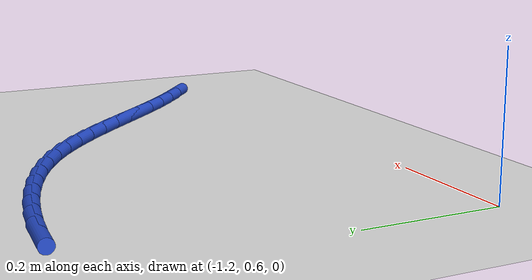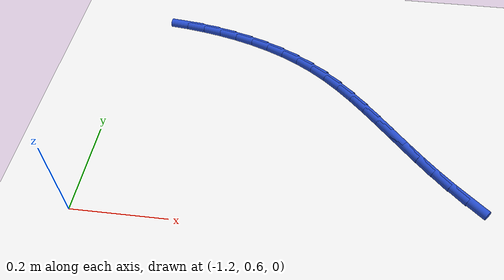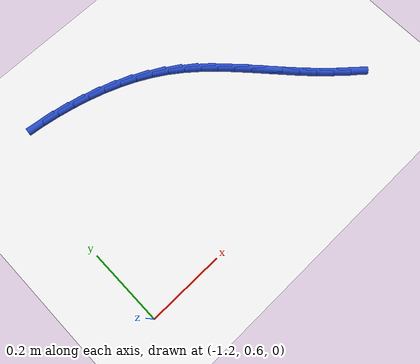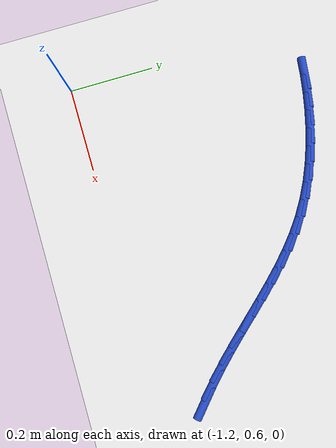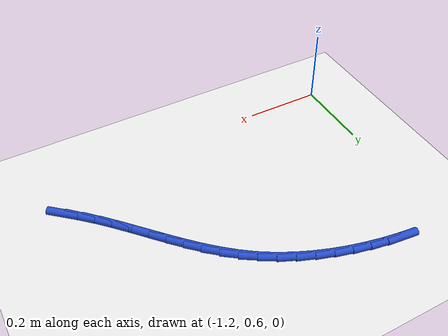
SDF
<sdf version="1.6">
 <world name="default">
  <model name="ground_plane">
   <static>1</static>
   <link name="link">
    <collision name="collision">
     <geometry><plane><normal>0 0 1</normal><size>100 100</size></plane></geometry>
     <surface><friction><ode><mu>100</mu><mu2>50</mu2></ode></friction></surface>
    </collision>
    <visual name="visual">
     <cast_shadows>0</cast_shadows>
     <geometry><plane><normal>0 0 1</normal><size>100 100</size></plane></geometry>
     <material>
      <script><uri>file://media/materials/scripts/gazebo.material</uri><name>Gazebo/WhiteGlow</name></script>
     </material>
    </visual>
   </link>
  </model>
  <model name="line">
   <link name="link_20">
    <pose>-0.4172818657614865 0.700809948610316 0.01 0 1.57 -0.7196823648466406</pose>
    <collision name="collision">
     <geometry><cylinder><radius>0.01</radius><length>0.08</length></cylinder></geometry>
    </collision>
    <visual name="visual">
     <material>
      <script><name>Gazebo/Blue</name><uri>file://media/materials/scripts/gazebo.material</uri></script>
     </material>
     <geometry><cylinder><radius>0.01</radius><length>0.08</length></cylinder></geometry>
    </visual>
   </link>
   <link name="link_21">
    <pose>-0.45041634927168483 0.7298525248971306 0.01 0 1.57 -0.7610096852235865</pose>
    <collision name="collision">
     <geometry><cylinder><radius>0.01</radius><length>0.08</length></cylinder></geometry>
    </collision>
    <visual name="visual">
     <material>
      <script><name>Gazebo/Blue</name><uri>file://media/materials/scripts/gazebo.material</uri></script>
     </material>
     <geometry><cylinder><radius>0.01</radius><length>0.08</length></cylinder></geometry>
    </visual>
   </link>
   <link name="link_22">
    <pose>-0.4821890321233908 0.7601120368964726 0.01 0 1.57 -0.797152304627542</pose>
    <collision name="collision">
     <geometry><cylinder><radius>0.01</radius><length>0.08</length></cylinder></geometry>
    </collision>
    <visual name="visual">
     <material>
      <script><name>Gazebo/Blue</name><uri>file://media/materials/scripts/gazebo.material</uri></script>
     </material>
     <geometry><cylinder><radius>0.01</radius><length>0.08</length></cylinder></geometry>
    </visual>
   </link>
   <link name="link_23">
    <pose>-0.512741858784416 0.7913916846673803 0.01 0 1.57 -0.8210310841916981</pose>
    <collision name="collision">
     <geometry><cylinder><radius>0.01</radius><length>0.08</length></cylinder></geometry>
    </collision>
    <visual name="visual">
     <material>
      <script><name>Gazebo/Blue</name><uri>file://media/materials/scripts/gazebo.material</uri></script>
     </material>
     <geometry><cylinder><radius>0.01</radius><length>0.08</length></cylinder></geometry>
    </visual>
   </link>
   <link name="link_24">
    <pose>-0.5424426831592627 0.8232883364614045 0.01 0 1.57 -0.8325101597866503</pose>
    <collision name="collision">
     <geometry><cylinder><radius>0.01</radius><length>0.08</length></cylinder></geometry>
    </collision>
    <visual name="visual">
     <material>
      <script><name>Gazebo/Blue</name><uri>file://media/materials/scripts/gazebo.material</uri></script>
     </material>
     <geometry><cylinder><radius>0.01</radius><length>0.08</length></cylinder></geometry>
    </visual>
   </link>
   <link name="link_25">
    <pose>-0.5716606430352817 0.8553976879103389 0.01 0 1.57 -0.8314720935630214</pose>
    <collision name="collision">
     <geometry><cylinder><radius>0.01</radius><length>0.08</length></cylinder></geometry>
    </collision>
    <visual name="visual">
     <material>
      <script><name>Gazebo/Blue</name><uri>file://media/materials/scripts/gazebo.material</uri></script>
     </material>
     <geometry><cylinder><radius>0.01</radius><length>0.08</length></cylinder></geometry>
    </visual>
   </link>
   <link name="link_26">
    <pose>-0.600764876199824 0.887315434645976 0.01 0 1.57 -0.8177228509698592</pose>
    <collision name="collision">
     <geometry><cylinder><radius>0.01</radius><length>0.08</length></cylinder></geometry>
    </collision>
    <visual name="visual">
     <material>
      <script><name>Gazebo/Blue</name><uri>file://media/materials/scripts/gazebo.material</uri></script>
     </material>
     <geometry><cylinder><radius>0.01</radius><length>0.08</length></cylinder></geometry>
    </visual>
   </link>
   <link name="link_27">
    <pose>-0.6301245204402404 0.9186372723001099 0.01 0 1.57 -0.7909934375270149</pose>
    <collision name="collision">
     <geometry><cylinder><radius>0.01</radius><length>0.08</length></cylinder></geometry>
    </collision>
    <visual name="visual">
     <material>
      <script><name>Gazebo/Blue</name><uri>file://media/materials/scripts/gazebo.material</uri></script>
     </material>
     <geometry><cylinder><radius>0.01</radius><length>0.08</length></cylinder></geometry>
    </visual>
   </link>
   <link name="link_28">
    <pose>-0.6601087135438817 0.9489588965045337 0.01 0 1.57 -0.7510052885653716</pose>
    <collision name="collision">
     <geometry><cylinder><radius>0.01</radius><length>0.08</length></cylinder></geometry>
    </collision>
    <visual name="visual">
     <material>
      <script><name>Gazebo/Blue</name><uri>file://media/materials/scripts/gazebo.material</uri></script>
     </material>
     <geometry><cylinder><radius>0.01</radius><length>0.08</length></cylinder></geometry>
    </visual>
   </link>
   <link name="link_29">
    <pose>-0.691086593298099 0.9778760028910407 0.01 0 1.57 -0.6976090979489733</pose>
    <collision name="collision">
     <geometry><cylinder><radius>0.01</radius><length>0.08</length></cylinder></geometry>
    </collision>
    <visual name="visual">
     <material>
      <script><name>Gazebo/Blue</name><uri>file://media/materials/scripts/gazebo.material</uri></script>
     </material>
     <geometry><cylinder><radius>0.01</radius><length>0.08</length></cylinder></geometry>
    </visual>
   </link>
   <link name="link_30">
    <pose>-0.7234272974902427 1.004984287091424 0.01 0 1.57 -0.6310009686447844</pose>
    <collision name="collision">
     <geometry><cylinder><radius>0.01</radius><length>0.08</length></cylinder></geometry>
    </collision>
    <visual name="visual">
     <material>
      <script><name>Gazebo/Blue</name><uri>file://media/materials/scripts/gazebo.material</uri></script>
     </material>
     <geometry><cylinder><radius>0.01</radius><length>0.08</length></cylinder></geometry>
    </visual>
   </link>
   <link name="link_31">
    <pose>-0.7574999639076643 1.0298794447374777 0.01 0 1.57 -0.5545024217298062</pose>
    <collision name="collision">
     <geometry><cylinder><radius>0.01</radius><length>0.08</length></cylinder></geometry>
    </collision>
    <visual name="visual">
     <material>
      <script><name>Gazebo/Blue</name><uri>file://media/materials/scripts/gazebo.material</uri></script>
     </material>
     <geometry><cylinder><radius>0.01</radius><length>0.08</length></cylinder></geometry>
    </visual>
   </link>
   <link name="link_32">
    <pose>-0.7935826733913394 1.0522260901025822 0.01 0 1.57 -0.48122745938894457</pose>
    <collision name="collision">
     <geometry><cylinder><radius>0.01</radius><length>0.08</length></cylinder></geometry>
    </collision>
    <visual name="visual">
     <material>
      <script><name>Gazebo/Blue</name><uri>file://media/materials/scripts/gazebo.material</uri></script>
     </material>
     <geometry><cylinder><radius>0.01</radius><length>0.08</length></cylinder></geometry>
    </visual>
   </link>
   <link name="link_33">
    <pose>-0.8315051828435908 1.072028162224167 0.01 0 1.57 -0.41462984590011337</pose>
    <collision name="collision">
     <geometry><cylinder><radius>0.01</radius><length>0.08</length></cylinder></geometry>
    </collision>
    <visual name="visual">
     <material>
      <script><name>Gazebo/Blue</name><uri>file://media/materials/scripts/gazebo.material</uri></script>
     </material>
     <geometry><cylinder><radius>0.01</radius><length>0.08</length></cylinder></geometry>
    </visual>
   </link>
   <link name="link_34">
    <pose>-0.8709595048268142 1.0893938552588143 0.01 0 1.57 -0.35409090840076</pose>
    <collision name="collision">
     <geometry><cylinder><radius>0.01</radius><length>0.08</length></cylinder></geometry>
    </collision>
    <visual name="visual">
     <material>
      <script><name>Gazebo/Blue</name><uri>file://media/materials/scripts/gazebo.material</uri></script>
     </material>
     <geometry><cylinder><radius>0.01</radius><length>0.08</length></cylinder></geometry>
    </visual>
   </link>
   <link name="link_35">
    <pose>-0.9116376147383644 1.1044313914923638 0.01 0 1.57 -0.29892685950490777</pose>
    <collision name="collision">
     <geometry><cylinder><radius>0.01</radius><length>0.08</length></cylinder></geometry>
    </collision>
    <visual name="visual">
     <material>
      <script><name>Gazebo/Blue</name><uri>file://media/materials/scripts/gazebo.material</uri></script>
     </material>
     <geometry><cylinder><radius>0.01</radius><length>0.08</length></cylinder></geometry>
    </visual>
   </link>
   <link name="link_36">
    <pose>-0.9532314879755962 1.1172489932106544 0.01 0 1.57 -0.24844329132971615</pose>
    <collision name="collision">
     <geometry><cylinder><radius>0.01</radius><length>0.08</length></cylinder></geometry>
    </collision>
    <visual name="visual">
     <material>
      <script><name>Gazebo/Blue</name><uri>file://media/materials/scripts/gazebo.material</uri></script>
     </material>
     <geometry><cylinder><radius>0.01</radius><length>0.08</length></cylinder></geometry>
    </visual>
   </link>
   <link name="link_37">
    <pose>-0.9954330999358645 1.1279548826995254 0.01 0 1.57 -0.2019263581818744</pose>
    <collision name="collision">
     <geometry><cylinder><radius>0.01</radius><length>0.08</length></cylinder></geometry>
    </collision>
    <visual name="visual">
     <material>
      <script><name>Gazebo/Blue</name><uri>file://media/materials/scripts/gazebo.material</uri></script>
     </material>
     <geometry><cylinder><radius>0.01</radius><length>0.08</length></cylinder></geometry>
    </visual>
   </link>
   <link name="link_38">
    <pose>-1.0379380443879933 1.1366563392020417 0.01 0 1.57 -0.15752989335012374</pose>
    <collision name="collision">
     <geometry><cylinder><radius>0.01</radius><length>0.08</length></cylinder></geometry>
    </collision>
    <visual name="visual">
     <material>
      <script><name>Gazebo/Blue</name><uri>file://media/materials/scripts/gazebo.material</uri></script>
     </material>
     <geometry><cylinder><radius>0.01</radius><length>0.08</length></cylinder></geometry>
    </visual>
   </link>
   <link name="link_39">
    <pose>-1.0805676246525286 1.1434278787457348 0.01 0 1.57 -0.11361183679511512</pose>
    <collision name="collision">
     <geometry><cylinder><radius>0.01</radius><length>0.08</length></cylinder></geometry>
    </collision>
    <visual name="visual">
     <material>
      <script><name>Gazebo/Blue</name><uri>file://media/materials/scripts/gazebo.material</uri></script>
     </material>
     <geometry><cylinder><radius>0.01</radius><length>0.08</length></cylinder></geometry>
    </visual>
   </link>
  </model>
 </world>
</sdf>
